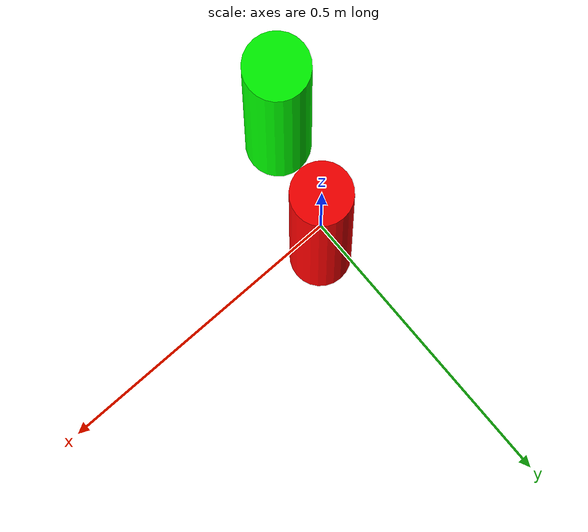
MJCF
<!-- https://mujoco.readthedocs.io/en/latest/overview.html?highlight=hello.xml#examples -->
<mujoco>
  <compiler inertiafromgeom="true" angle="degree" autolimits="true"/>
  <default>
  </default>
  <option timestep=".005" iterations="50" tolerance="1e-16" solver="Newton" jacobian="dense" cone="pyramidal">
    <flag contact="enable"/>
  </option>
   <worldbody>
      <light diffuse="0 0 0" pos="0 0 10" dir="0 0 -1"/>
      <body pos="0 0 0" euler="0 180 0">
         <joint name="joint0" type="hinge" axis = "0 -1 0" pos = "0 0 0.5"/>
         <geom type="cylinder" size="0.05 0.5" rgba="1 0 0 1" mass="1"/>
         <body pos="0 -0.1 -1" euler="0 0 0">
           <joint name="joint1" type="hinge" axis = "0 -1 0" pos = "0 0 0.5"/>
           <geom type="cylinder" size="0.05 0.5" rgba="0 1 0 1" mass="1"/>
         </body>
      </body>
    </worldbody>
   <actuator>
     <motor name="torque0" joint="joint0"  gear="1" />
     <motor name="torque1" joint="joint1"  gear="1" />
   </actuator>
</mujoco>
